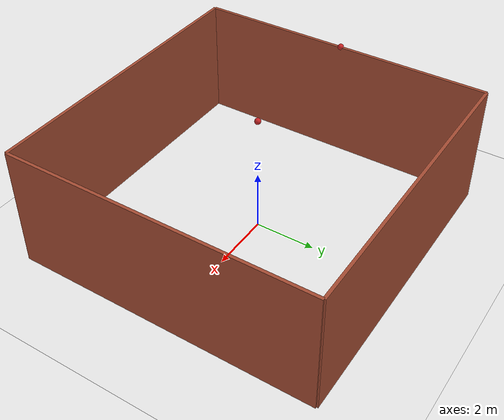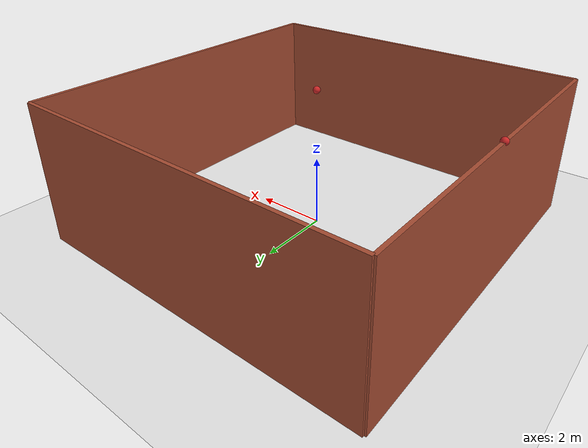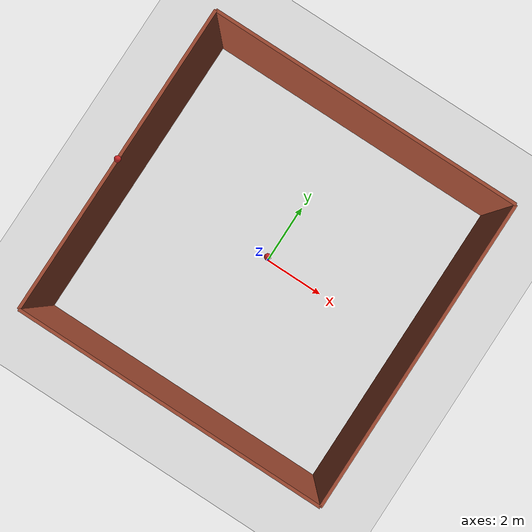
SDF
<?xml version="1.0" encoding="utf-8"?>

<sdf version="1.6">
  <world name="default">
    <plugin name="gazebo_ros_state" filename="libgazebo_ros_state.so"/>

    <!-- Sun -->
    <include>
      <uri>model://sun</uri>
    </include>

    <!-- Ground -->
    <model name="ground">
      <static>true</static>
      <pose>0 0 0 0 0 0</pose>
      <link name="ground_link">
        <collision name="ground_collision">
          <geometry>
            <plane>
              <size>100 100</size>
            </plane>
          </geometry>
        </collision>
        <visual name="ground_visual">
          <geometry>
            <plane>
              <size>100 100</size>
            </plane>
          </geometry>
          <material>
            <script>
              <uri>file://media/materials/scripts/gazebo.material</uri>
              <name>Gazebo/White</name>
            </script>
          </material>
        </visual>
      </link>
    </model>

    <!-- Wall 1 (Front) -->
    <model name="wall_1">
      <static>true</static>
      <pose>0 -5 2 0 0 0</pose>
      <link name="wall_1_link">
        <collision name="wall_1_collision">
          <geometry>
            <box>
              <size>10 0.1 4</size>
            </box>
          </geometry>
        </collision>
        <visual name="wall_1_visual">
          <geometry>
            <box>
              <size>10 0.1 4</size>
            </box>
          </geometry>
          <material>
            <script>
              <uri>file://media/materials/scripts/gazebo.material</uri>
              <name>Gazebo/Bricks</name>
            </script>
          </material>
        </visual>
      </link>
    </model>

    <!-- Wall 2 (Back) -->
    <model name="wall_2">
      <static>true</static>
      <pose>0 5 2 0 0 0</pose>
      <link name="wall_2_link">
        <collision name="wall_2_collision">
          <geometry>
            <box>
              <size>10 0.1 4</size>
            </box>
          </geometry>
        </collision>
        <visual name="wall_2_visual">
          <geometry>
            <box>
              <size>10 0.1 4</size>
            </box>
          </geometry>
          <material>
            <script>
              <uri>file://media/materials/scripts/gazebo.material</uri>
              <name>Gazebo/Bricks</name>
            </script>
          </material>
        </visual>
      </link>
    </model>

    <!-- Wall 3 (Left) -->
    <model name="wall_3">
      <static>true</static>
      <pose>-5 0 2 0 0 0</pose>
      <link name="wall_3_link">
        <collision name="wall_3_collision">
          <geometry>
            <box>
              <size>0.1 10 4</size>
            </box>
          </geometry>
        </collision>
        <visual name="wall_3_visual">
          <geometry>
            <box>
              <size>0.1 10 4</size>
            </box>
          </geometry>
          <material>
            <script>
              <uri>file://media/materials/scripts/gazebo.material</uri>
	            <name>Gazebo/Bricks</name>
            </script>
          </material>
        </visual>
      </link>
    </model>

    <!-- Wall 4 (Right) -->
    <model name="wall_4">
      <static>true</static>
      <pose>5 0 2 0 0 0</pose>
      <link name="wall_4_link">
        <collision name="wall_4_collision">
          <geometry>
            <box>
              <size>0.1 10 4</size>
            </box>
          </geometry>
        </collision>
        <visual name="wall_4_visual">
          <geometry>
            <box>
              <size>0.1 10 4</size>
            </box>
          </geometry>
          <material>
            <script>
              <uri>file://media/materials/scripts/gazebo.material</uri>
              <name>Gazebo/Bricks</name>
            </script>
          </material>
        </visual>
      </link>
    </model>

    <!-- RF Beacons -->
    <model name="rf_beacon1">
      <static>true</static>
      <pose>0 0 4 0 0 0</pose>
      <link name="body">
        <!-- Visual appearance of the RF system -->
        <visual name="beacon_visual">
          <geometry>
            <sphere>
              <radius>0.1</radius>
            </sphere>
          </geometry>
          <material>
            <script>
              <uri>file://media/materials/scripts/gazebo.material</uri>
              <name>Gazebo/Red</name>
            </script>
          </material>
        </visual>
      </link>
    </model>

    <model name="rf_beacon2">
      <static>true</static>
      <pose>-5 0 4 0 0 0</pose>
      <link name="body">
        <!-- Visual appearance of the RF system -->
        <visual name="beacon_visual">
          <geometry>
            <sphere>
              <radius>0.1</radius>
            </sphere>
          </geometry>
          <material>
            <script>
              <uri>file://media/materials/scripts/gazebo.material</uri>
              <name>Gazebo/Red</name>
            </script>
          </material>
        </visual>
      </link>
    </model>
  </world>
</sdf>
